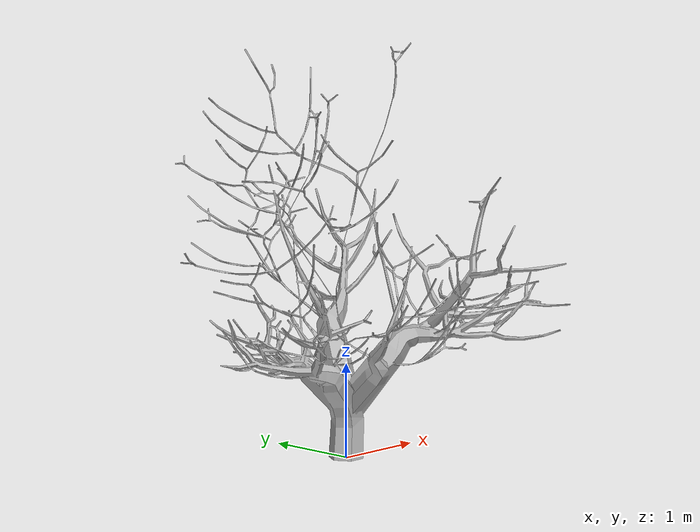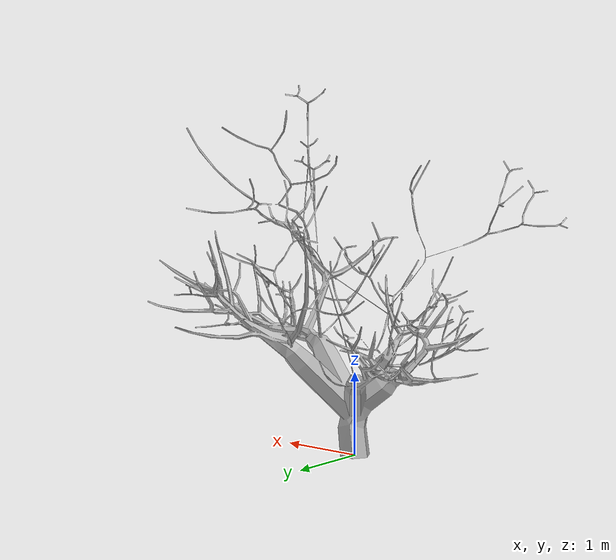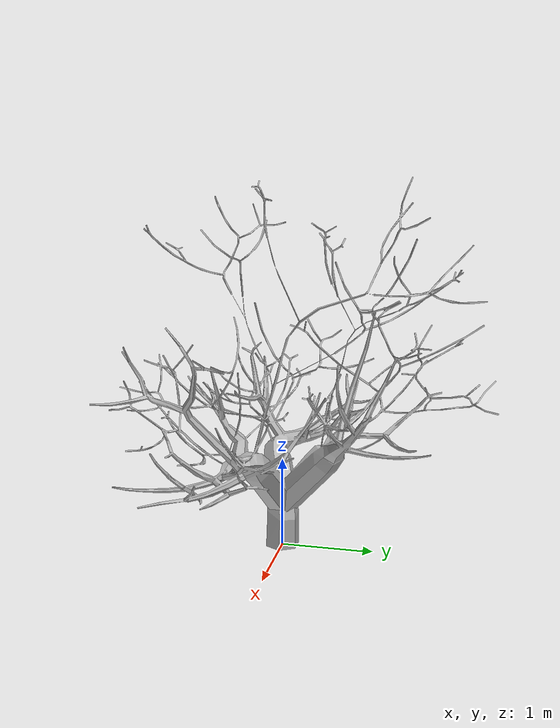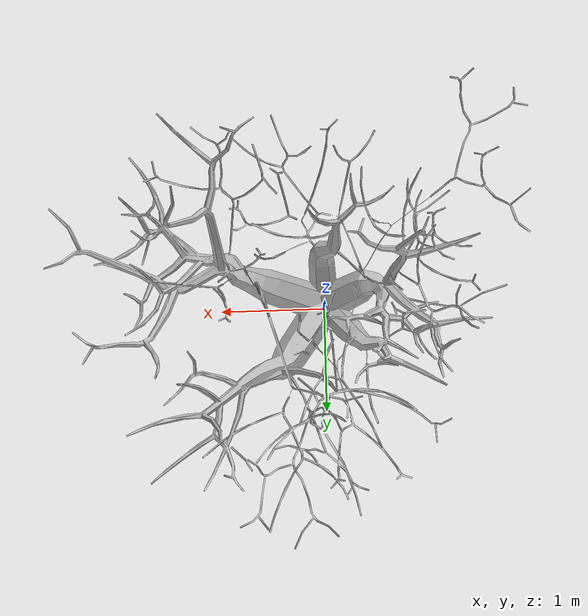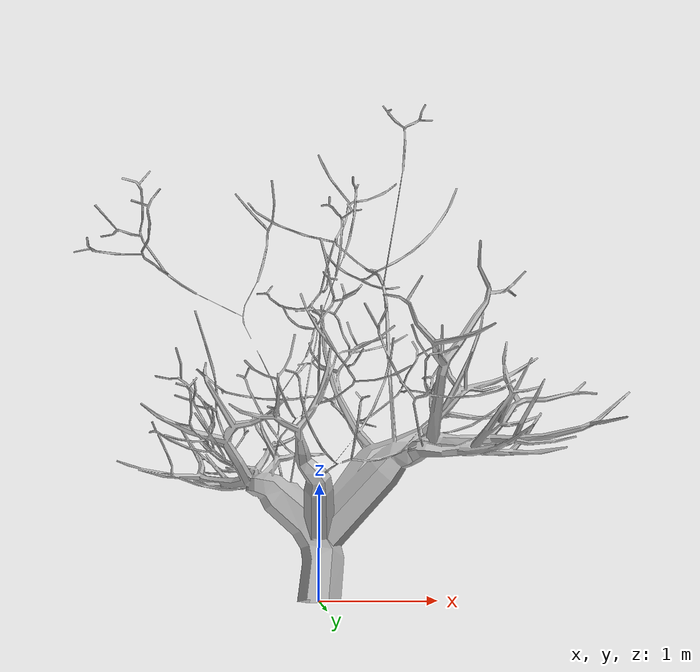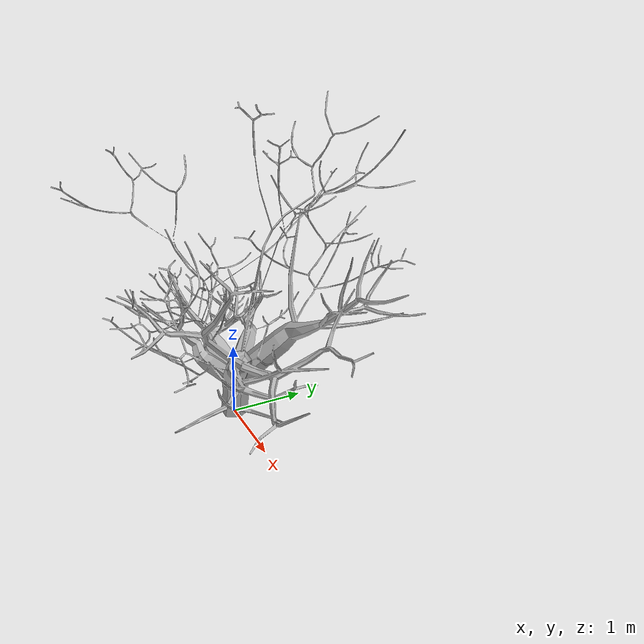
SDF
<?xml version="1.0" ?>
<sdf version="1.6">
  <model name="random_tree_0">
    <static>true</static>
    <link name="link">
      <visual name="visual">
        <geometry>
          <mesh>
            <uri>model://random_tree_0/meshes/random_tree_0.dae</uri>
          </mesh>
        </geometry>
      </visual>
      <collision name="collision">
        <geometry>
          <mesh>
            <uri>model://random_tree_0/meshes/random_tree_0.dae</uri>
          </mesh>
        </geometry>
      </collision>
    </link>
  </model>
</sdf>
